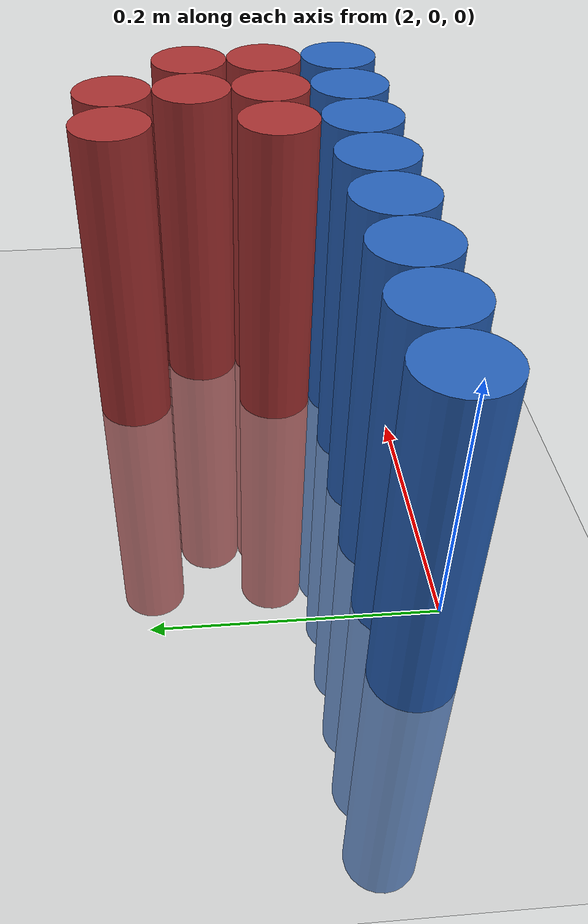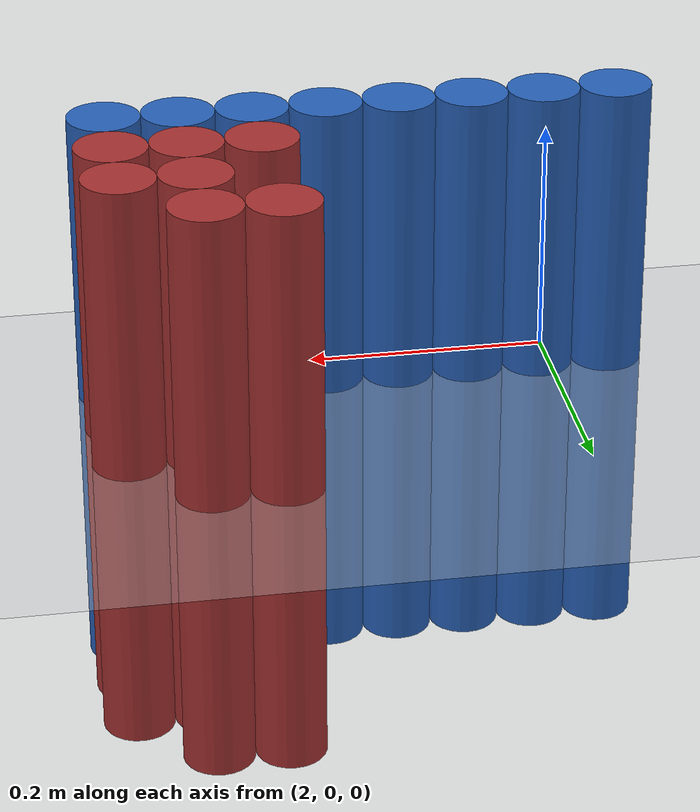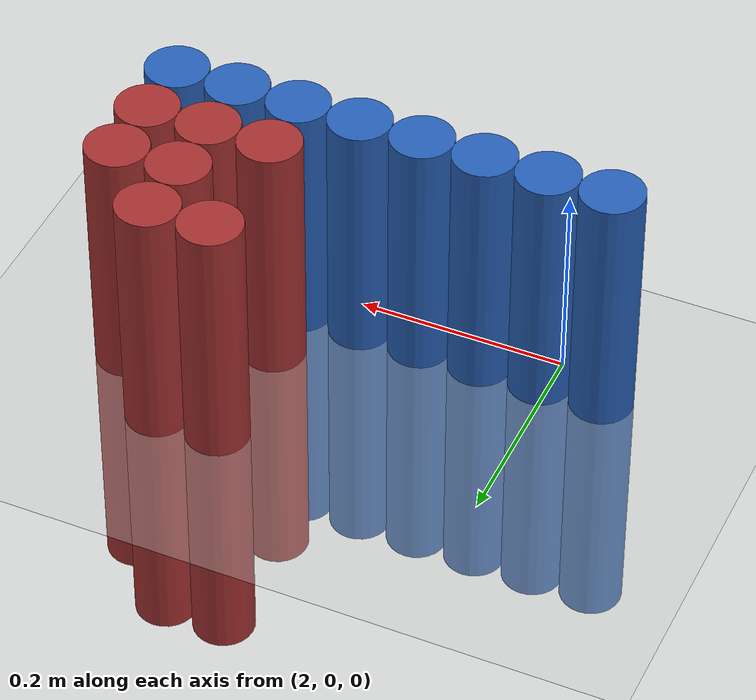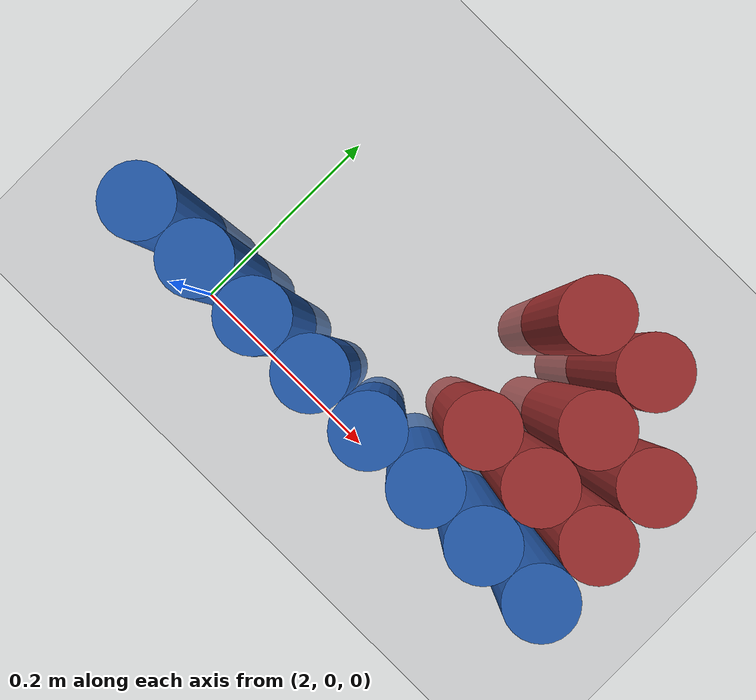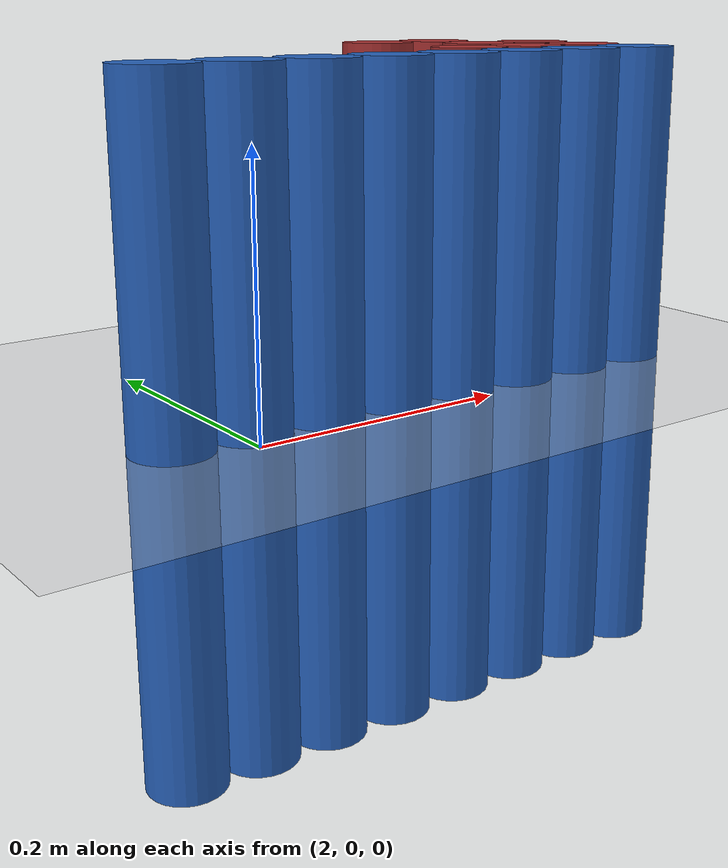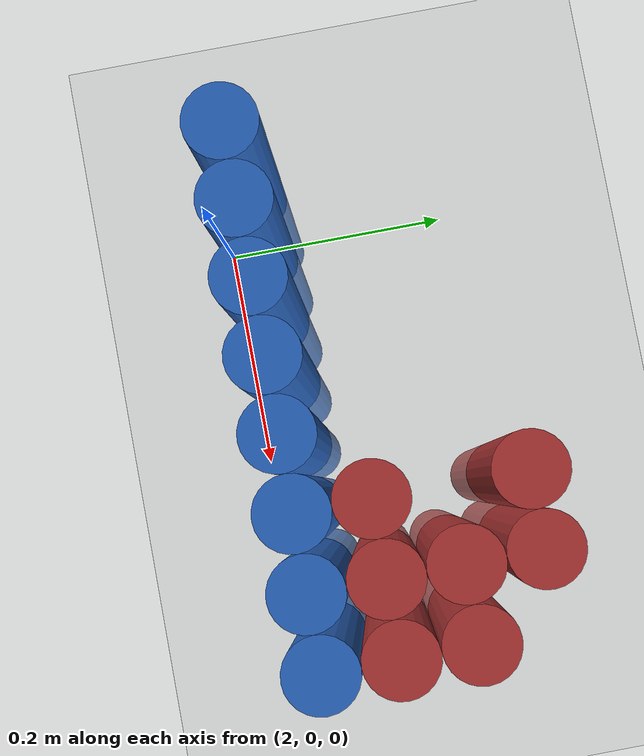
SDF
<sdf version="1.6">
 <world name="default">
  <model name="ground_plane">
   <static>1</static>
   <link name="link">
    <collision name="collision">
     <geometry><plane><normal>0 0 1</normal><size>100 100</size></plane></geometry>
     <surface><friction><ode><mu>100</mu><mu2>50</mu2></ode></friction></surface>
    </collision>
    <visual name="visual">
     <cast_shadows>0</cast_shadows>
     <geometry><plane><normal>0 0 1</normal><size>100 100</size></plane></geometry>
     <material>
      <script><uri>file://media/materials/scripts/gazebo.material</uri><name>Gazebo/Grey</name></script>
     </material>
    </visual>
   </link>
  </model>
  <model name="unit_cylinder_91">
   <static>1</static>
   <pose>1.950000 0.030000 0.000000 0.000000 0.000000 0.000000</pose>
   <link name="link">
    <inertial>
     <mass>1</mass>
     <inertia><ixx>0.145833</ixx><ixy>0</ixy><ixz>0</ixz><iyy>0.145833</iyy><iyz>0</iyz><izz>0.125</izz></inertia>
    </inertial>
    <collision name="collision">
     <geometry><cylinder><radius>0.030000</radius><length>0.5</length></cylinder></geometry>
    </collision>
    <visual name="visual">
     <geometry><cylinder><radius>0.030000</radius><length>0.5</length></cylinder></geometry>
     <material>
      <ambient>0.152000 0.379000 0.720000 1</ambient>
      <diffuse>0.152000 0.379000 0.720000 1</diffuse>
     </material>
     <material>
      <script><name>Gazebo/Grey</name><uri>file://media/materials/scripts/gazebo.material</uri></script>
     </material>
    </visual>
   </link>
  </model>
  <model name="unit_cylinder_93">
   <static>1</static>
   <pose>2.010000 0.030000 0.000000 0.000000 0.000000 0.000000</pose>
   <link name="link">
    <inertial>
     <mass>1</mass>
     <inertia><ixx>0.145833</ixx><ixy>0</ixy><ixz>0</ixz><iyy>0.145833</iyy><iyz>0</iyz><izz>0.125</izz></inertia>
    </inertial>
    <collision name="collision">
     <geometry><cylinder><radius>0.030000</radius><length>0.5</length></cylinder></geometry>
    </collision>
    <visual name="visual">
     <geometry><cylinder><radius>0.030000</radius><length>0.5</length></cylinder></geometry>
     <material>
      <ambient>0.152000 0.379000 0.720000 1</ambient>
      <diffuse>0.152000 0.379000 0.720000 1</diffuse>
     </material>
     <material>
      <script><name>Gazebo/Grey</name><uri>file://media/materials/scripts/gazebo.material</uri></script>
     </material>
    </visual>
   </link>
  </model>
  <model name="unit_cylinder_176">
   <static>1</static>
   <pose>2.250000 0.210000 0.000000 0.000000 0.000000 0.000000</pose>
   <link name="link">
    <inertial>
     <mass>1</mass>
     <inertia><ixx>0.145833</ixx><ixy>0</ixy><ixz>0</ixz><iyy>0.145833</iyy><iyz>0</iyz><izz>0.125</izz></inertia>
    </inertial>
    <collision name="collision">
     <geometry><cylinder><radius>0.030000</radius><length>0.5</length></cylinder></geometry>
    </collision>
    <visual name="visual">
     <geometry><cylinder><radius>0.030000</radius><length>0.5</length></cylinder></geometry>
     <material>
      <ambient>0.648000 0.192000 0.192000 1</ambient>
      <diffuse>0.648000 0.192000 0.192000 1</diffuse>
     </material>
     <material>
      <script><name>Gazebo/Grey</name><uri>file://media/materials/scripts/gazebo.material</uri></script>
     </material>
    </visual>
   </link>
  </model>
  <model name="unit_cylinder_177">
   <static>1</static>
   <pose>2.310000 0.210000 0.000000 0.000000 0.000000 0.000000</pose>
   <link name="link">
    <inertial>
     <mass>1</mass>
     <inertia><ixx>0.145833</ixx><ixy>0</ixy><ixz>0</ixz><iyy>0.145833</iyy><iyz>0</iyz><izz>0.125</izz></inertia>
    </inertial>
    <collision name="collision">
     <geometry><cylinder><radius>0.030000</radius><length>0.5</length></cylinder></geometry>
    </collision>
    <visual name="visual">
     <geometry><cylinder><radius>0.030000</radius><length>0.5</length></cylinder></geometry>
     <material>
      <ambient>0.648000 0.192000 0.192000 1</ambient>
      <diffuse>0.648000 0.192000 0.192000 1</diffuse>
     </material>
     <material>
      <script><name>Gazebo/Grey</name><uri>file://media/materials/scripts/gazebo.material</uri></script>
     </material>
    </visual>
   </link>
  </model>
  <model name="unit_cylinder_184">
   <static>1</static>
   <pose>2.310000 0.150000 0.000000 0.000000 0.000000 0.000000</pose>
   <link name="link">
    <inertial>
     <mass>1</mass>
     <inertia><ixx>0.145833</ixx><ixy>0</ixy><ixz>0</ixz><iyy>0.145833</iyy><iyz>0</iyz><izz>0.125</izz></inertia>
    </inertial>
    <collision name="collision">
     <geometry><cylinder><radius>0.030000</radius><length>0.5</length></cylinder></geometry>
    </collision>
    <visual name="visual">
     <geometry><cylinder><radius>0.030000</radius><length>0.5</length></cylinder></geometry>
     <material>
      <ambient>0.648000 0.192000 0.192000 1</ambient>
      <diffuse>0.648000 0.192000 0.192000 1</diffuse>
     </material>
     <material>
      <script><name>Gazebo/Grey</name><uri>file://media/materials/scripts/gazebo.material</uri></script>
     </material>
    </visual>
   </link>
  </model>
  <model name="unit_cylinder_185">
   <static>1</static>
   <pose>2.370000 0.150000 0.000000 0.000000 0.000000 0.000000</pose>
   <link name="link">
    <inertial>
     <mass>1</mass>
     <inertia><ixx>0.145833</ixx><ixy>0</ixy><ixz>0</ixz><iyy>0.145833</iyy><iyz>0</iyz><izz>0.125</izz></inertia>
    </inertial>
    <collision name="collision">
     <geometry><cylinder><radius>0.030000</radius><length>0.5</length></cylinder></geometry>
    </collision>
    <visual name="visual">
     <geometry><cylinder><radius>0.030000</radius><length>0.5</length></cylinder></geometry>
     <material>
      <ambient>0.648000 0.192000 0.192000 1</ambient>
      <diffuse>0.648000 0.192000 0.192000 1</diffuse>
     </material>
     <material>
      <script><name>Gazebo/Grey</name><uri>file://media/materials/scripts/gazebo.material</uri></script>
     </material>
    </visual>
   </link>
  </model>
  <model name="unit_cylinder_195">
   <static>1</static>
   <pose>2.250000 0.090000 0.000000 0.000000 0.000000 0.000000</pose>
   <link name="link">
    <inertial>
     <mass>1</mass>
     <inertia><ixx>0.145833</ixx><ixy>0</ixy><ixz>0</ixz><iyy>0.145833</iyy><iyz>0</iyz><izz>0.125</izz></inertia>
    </inertial>
    <collision name="collision">
     <geometry><cylinder><radius>0.030000</radius><length>0.5</length></cylinder></geometry>
    </collision>
    <visual name="visual">
     <geometry><cylinder><radius>0.030000</radius><length>0.5</length></cylinder></geometry>
     <material>
      <ambient>0.648000 0.192000 0.192000 1</ambient>
      <diffuse>0.648000 0.192000 0.192000 1</diffuse>
     </material>
     <material>
      <script><name>Gazebo/Grey</name><uri>file://media/materials/scripts/gazebo.material</uri></script>
     </material>
    </visual>
   </link>
  </model>
  <model name="unit_cylinder_196">
   <static>1</static>
   <pose>2.310000 0.090000 0.000000 0.000000 0.000000 0.000000</pose>
   <link name="link">
    <inertial>
     <mass>1</mass>
     <inertia><ixx>0.145833</ixx><ixy>0</ixy><ixz>0</ixz><iyy>0.145833</iyy><iyz>0</iyz><izz>0.125</izz></inertia>
    </inertial>
    <collision name="collision">
     <geometry><cylinder><radius>0.030000</radius><length>0.5</length></cylinder></geometry>
    </collision>
    <visual name="visual">
     <geometry><cylinder><radius>0.030000</radius><length>0.5</length></cylinder></geometry>
     <material>
      <ambient>0.648000 0.192000 0.192000 1</ambient>
      <diffuse>0.648000 0.192000 0.192000 1</diffuse>
     </material>
     <material>
      <script><name>Gazebo/Grey</name><uri>file://media/materials/scripts/gazebo.material</uri></script>
     </material>
    </visual>
   </link>
  </model>
  <model name="unit_cylinder_197">
   <static>1</static>
   <pose>2.370000 0.090000 0.000000 0.000000 0.000000 0.000000</pose>
   <link name="link">
    <inertial>
     <mass>1</mass>
     <inertia><ixx>0.145833</ixx><ixy>0</ixy><ixz>0</ixz><iyy>0.145833</iyy><iyz>0</iyz><izz>0.125</izz></inertia>
    </inertial>
    <collision name="collision">
     <geometry><cylinder><radius>0.030000</radius><length>0.5</length></cylinder></geometry>
    </collision>
    <visual name="visual">
     <geometry><cylinder><radius>0.030000</radius><length>0.5</length></cylinder></geometry>
     <material>
      <ambient>0.648000 0.192000 0.192000 1</ambient>
      <diffuse>0.648000 0.192000 0.192000 1</diffuse>
     </material>
     <material>
      <script><name>Gazebo/Grey</name><uri>file://media/materials/scripts/gazebo.material</uri></script>
     </material>
    </visual>
   </link>
  </model>
  <model name="unit_cylinder_215">
   <static>1</static>
   <pose>2.070000 0.030000 0.000000 0.000000 0.000000 0.000000</pose>
   <link name="link">
    <inertial>
     <mass>1</mass>
     <inertia><ixx>0.145833</ixx><ixy>0</ixy><ixz>0</ixz><iyy>0.145833</iyy><iyz>0</iyz><izz>0.125</izz></inertia>
    </inertial>
    <collision name="collision">
     <geometry><cylinder><radius>0.030000</radius><length>0.5</length></cylinder></geometry>
    </collision>
    <visual name="visual">
     <geometry><cylinder><radius>0.030000</radius><length>0.5</length></cylinder></geometry>
     <material>
      <ambient>0.152000 0.379000 0.720000 1</ambient>
      <diffuse>0.152000 0.379000 0.720000 1</diffuse>
     </material>
     <material>
      <script><name>Gazebo/Grey</name><uri>file://media/materials/scripts/gazebo.material</uri></script>
     </material>
    </visual>
   </link>
  </model>
  <model name="unit_cylinder_216">
   <static>1</static>
   <pose>2.130000 0.030000 0.000000 0.000000 0.000000 0.000000</pose>
   <link name="link">
    <inertial>
     <mass>1</mass>
     <inertia><ixx>0.145833</ixx><ixy>0</ixy><ixz>0</ixz><iyy>0.145833</iyy><iyz>0</iyz><izz>0.125</izz></inertia>
    </inertial>
    <collision name="collision">
     <geometry><cylinder><radius>0.030000</radius><length>0.5</length></cylinder></geometry>
    </collision>
    <visual name="visual">
     <geometry><cylinder><radius>0.030000</radius><length>0.5</length></cylinder></geometry>
     <material>
      <ambient>0.152000 0.379000 0.720000 1</ambient>
      <diffuse>0.152000 0.379000 0.720000 1</diffuse>
     </material>
     <material>
      <script><name>Gazebo/Grey</name><uri>file://media/materials/scripts/gazebo.material</uri></script>
     </material>
    </visual>
   </link>
  </model>
  <model name="unit_cylinder_217">
   <static>1</static>
   <pose>2.190000 0.030000 0.000000 0.000000 0.000000 0.000000</pose>
   <link name="link">
    <inertial>
     <mass>1</mass>
     <inertia><ixx>0.145833</ixx><ixy>0</ixy><ixz>0</ixz><iyy>0.145833</iyy><iyz>0</iyz><izz>0.125</izz></inertia>
    </inertial>
    <collision name="collision">
     <geometry><cylinder><radius>0.030000</radius><length>0.5</length></cylinder></geometry>
    </collision>
    <visual name="visual">
     <geometry><cylinder><radius>0.030000</radius><length>0.5</length></cylinder></geometry>
     <material>
      <ambient>0.152000 0.379000 0.720000 1</ambient>
      <diffuse>0.152000 0.379000 0.720000 1</diffuse>
     </material>
     <material>
      <script><name>Gazebo/Grey</name><uri>file://media/materials/scripts/gazebo.material</uri></script>
     </material>
    </visual>
   </link>
  </model>
  <model name="unit_cylinder_218">
   <static>1</static>
   <pose>2.250000 0.030000 0.000000 0.000000 0.000000 0.000000</pose>
   <link name="link">
    <inertial>
     <mass>1</mass>
     <inertia><ixx>0.145833</ixx><ixy>0</ixy><ixz>0</ixz><iyy>0.145833</iyy><iyz>0</iyz><izz>0.125</izz></inertia>
    </inertial>
    <collision name="collision">
     <geometry><cylinder><radius>0.030000</radius><length>0.5</length></cylinder></geometry>
    </collision>
    <visual name="visual">
     <geometry><cylinder><radius>0.030000</radius><length>0.5</length></cylinder></geometry>
     <material>
      <ambient>0.152000 0.379000 0.720000 1</ambient>
      <diffuse>0.152000 0.379000 0.720000 1</diffuse>
     </material>
     <material>
      <script><name>Gazebo/Grey</name><uri>file://media/materials/scripts/gazebo.material</uri></script>
     </material>
    </visual>
   </link>
  </model>
  <model name="unit_cylinder_219">
   <static>1</static>
   <pose>2.310000 0.030000 0.000000 0.000000 0.000000 0.000000</pose>
   <link name="link">
    <inertial>
     <mass>1</mass>
     <inertia><ixx>0.145833</ixx><ixy>0</ixy><ixz>0</ixz><iyy>0.145833</iyy><iyz>0</iyz><izz>0.125</izz></inertia>
    </inertial>
    <collision name="collision">
     <geometry><cylinder><radius>0.030000</radius><length>0.5</length></cylinder></geometry>
    </collision>
    <visual name="visual">
     <geometry><cylinder><radius>0.030000</radius><length>0.5</length></cylinder></geometry>
     <material>
      <ambient>0.152000 0.379000 0.720000 1</ambient>
      <diffuse>0.152000 0.379000 0.720000 1</diffuse>
     </material>
     <material>
      <script><name>Gazebo/Grey</name><uri>file://media/materials/scripts/gazebo.material</uri></script>
     </material>
    </visual>
   </link>
  </model>
  <model name="unit_cylinder_220">
   <static>1</static>
   <pose>2.370000 0.030000 0.000000 0.000000 0.000000 0.000000</pose>
   <link name="link">
    <inertial>
     <mass>1</mass>
     <inertia><ixx>0.145833</ixx><ixy>0</ixy><ixz>0</ixz><iyy>0.145833</iyy><iyz>0</iyz><izz>0.125</izz></inertia>
    </inertial>
    <collision name="collision">
     <geometry><cylinder><radius>0.030000</radius><length>0.5</length></cylinder></geometry>
    </collision>
    <visual name="visual">
     <geometry><cylinder><radius>0.030000</radius><length>0.5</length></cylinder></geometry>
     <material>
      <ambient>0.152000 0.379000 0.720000 1</ambient>
      <diffuse>0.152000 0.379000 0.720000 1</diffuse>
     </material>
     <material>
      <script><name>Gazebo/Grey</name><uri>file://media/materials/scripts/gazebo.material</uri></script>
     </material>
    </visual>
   </link>
  </model>
 </world>
</sdf>
